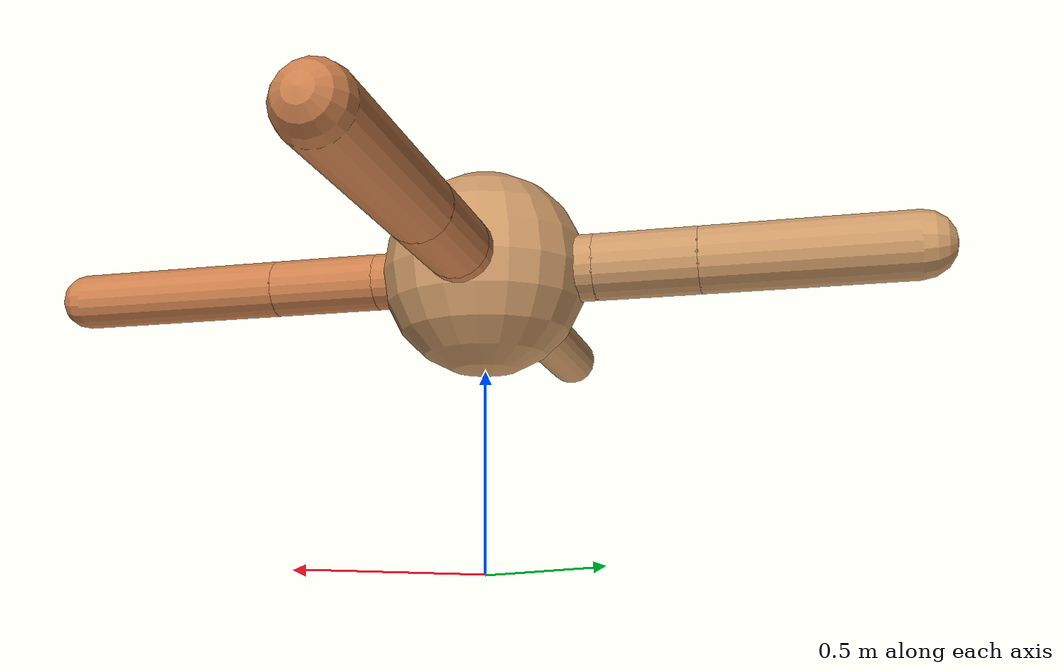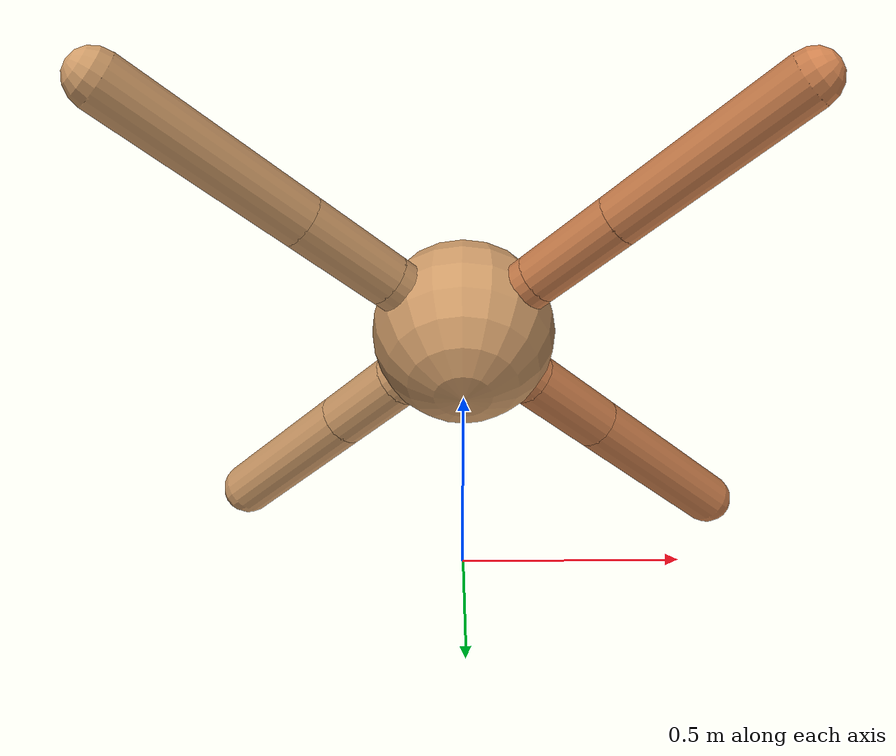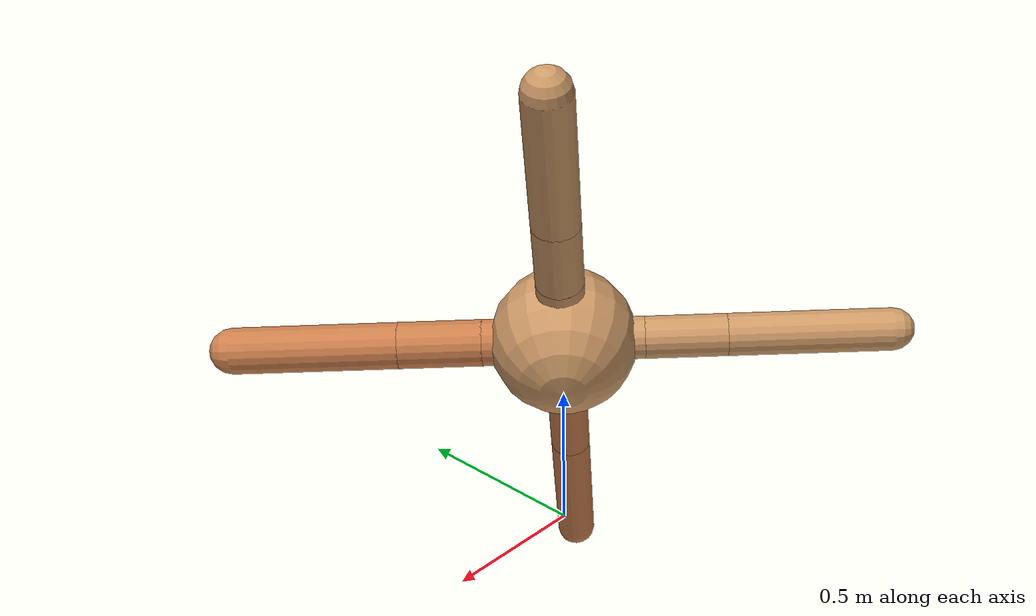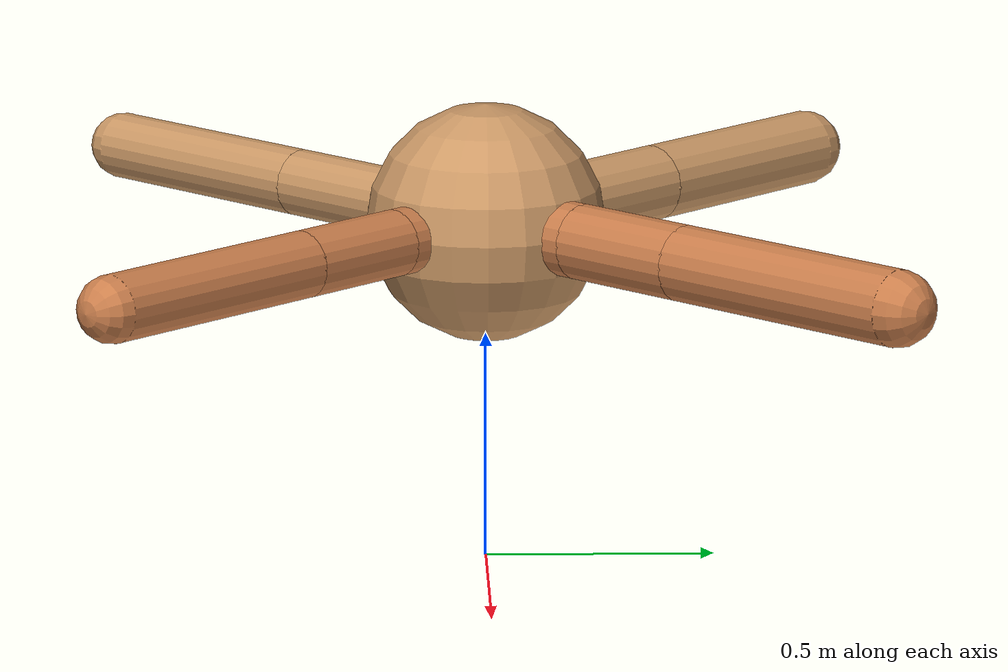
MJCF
<?xml version="1.0" ?>
<mujoco model="ant">

	<compiler angle="degree" coordinate="local" inertiafromgeom="true"/>

	<option integrator="RK4" timestep="0.01"/>

	<custom>

		<numeric data="0.0 0.0 0.55 1.0 0.0 0.0 0.0 0.0 1.0 0.0 -1.0 0.0 -1.0 0.0 1.0" name="init_qpos"/>

	</custom>

	<default>

		<joint armature="1" damping="1" limited="true"/>

		<geom conaffinity="0" condim="3" density="5.0" friction="1.5 0.1 0.1" margin="0.01" rgba="0.8 0.6 0.4 1"/>

	</default>

	<worldbody>

		<body name="torso" pos="0 0 0.75">

			<geom name="torso_geom" pos="0 0 0" size="0.2594515305948725" type="sphere"/>

			<!--joint armature="0" damping="0" limited="false" margin="0.01" name="root" pos="0 0 0" type="free"/-->

			<body name="front_left_leg" pos="0 0 0">

				<geom fromto="0 0 0 0.2 0.2 0" name="aux_1_geom" size="0.08216102997254102" type="capsule" rgba=".8 .5 .3 1"/>

				<body name="aux_1" pos="0.2 0.2 0">

					<joint axis="0 0 1" name="hip_1" pos="0.0 0.0 0.0" range="-40 40" type="hinge"/>

					<geom fromto="0 0 0 0.20792364025305343 0.20792364025305343 0" name="left_leg_geom" size="0.08216102997254102" type="capsule" rgba=".8 .5 .3 1"/>

					<body pos="0.20792364025305343 0.20792364025305343 0" name="front_left_foot">

						<joint axis="-1 1 0" name="ankle_1" pos="0.0 0.0 0.0" range="30 100" type="hinge"/>

						<geom fromto="0 0 0 0.41584728050610686 0.41584728050610686 0" name="left_ankle_geom" size="0.08216102997254102" type="capsule" rgba=".8 .5 .3 1"/>

					</body>

				</body>

			</body>

			<body name="front_right_leg" pos="0 0 0">

				<geom fromto="0 0 0 -0.2 0.2 0" name="aux_2_geom" size="0.08366456833780202" type="capsule"/>

				<body name="aux_2" pos="-0.2 0.2 0">

					<joint axis="0 0 1" name="hip_2" pos="0.0 0.0 0.0" range="-40 40" type="hinge"/>

					<geom fromto="0 0 0 -0.18107218717203621 0.18107218717203621 0" name="right_leg_geom" size="0.08366456833780202" type="capsule"/>

					<body pos="-0.18107218717203621 0.18107218717203621 0" name="front_right_foot">

						<joint axis="1 1 0" name="ankle_2" pos="0.0 0.0 0.0" range="-100 -30" type="hinge"/>

						<geom fromto="0 0 0 -0.36214437434407243 0.36214437434407243 0" name="right_ankle_geom" size="0.08366456833780202" type="capsule"/>

					</body>

				</body>

			</body>

			<body name="left_back_leg" pos="0 0 0">

				<geom fromto="0 0 0 -0.2 -0.2 0" name="aux_3_geom" size="0.07439533517060945" type="capsule"/>

				<body name="aux_3" pos="-0.2 -0.2 0">

					<joint axis="0 0 1" name="hip_3" pos="0.0 0.0 0.0" range="-40 40" type="hinge"/>

					<geom fromto="0 0 0 -0.20195560353188702 -0.20195560353188702 0" name="back_leg_geom" size="0.07439533517060945" type="capsule"/>

					<body pos="-0.20195560353188702 -0.20195560353188702 0" name="left_back_foot">

						<joint axis="-1 1 0" name="ankle_3" pos="0.0 0.0 0.0" range="-100 -30" type="hinge"/>

						<geom fromto="0 0 0 -0.40391120706377404 -0.40391120706377404 0" name="third_ankle_geom" size="0.07439533517060945" type="capsule"/>

					</body>

				</body>

			</body>

			<body name="right_back_leg" pos="0 0 0">

				<geom fromto="0 0 0 0.2 -0.2 0" name="aux_4_geom" size="0.07260240419103206" type="capsule" rgba=".8 .5 .3 1"/>

				<body name="aux_4" pos="0.2 -0.2 0">

					<joint axis="0 0 1" name="hip_4" pos="0.0 0.0 0.0" range="-40 40" type="hinge"/>

					<geom fromto="0 0 0 0.19582920956964714 -0.19582920956964714 0" name="rightback_leg_geom" size="0.07260240419103206" type="capsule" rgba=".8 .5 .3 1"/>

					<body pos="0.19582920956964714 -0.19582920956964714 0" name="right_back_foot">

						<joint axis="1 1 0" name="ankle_4" pos="0.0 0.0 0.0" range="30 100" type="hinge"/>

						<geom fromto="0 0 0 0.3916584191392943 -0.3916584191392943 0" name="fourth_ankle_geom" size="0.07260240419103206" type="capsule" rgba=".8 .5 .3 1"/>

					</body>

				</body>

			</body>

		</body>

	</worldbody>

	<actuator>

		<motor ctrllimited="true" ctrlrange="-1.0 1.0" joint="hip_4" gear="150"/>

		<motor ctrllimited="true" ctrlrange="-1.0 1.0" joint="ankle_4" gear="150"/>

		<motor ctrllimited="true" ctrlrange="-1.0 1.0" joint="hip_1" gear="150"/>

		<motor ctrllimited="true" ctrlrange="-1.0 1.0" joint="ankle_1" gear="150"/>

		<motor ctrllimited="true" ctrlrange="-1.0 1.0" joint="hip_2" gear="150"/>

		<motor ctrllimited="true" ctrlrange="-1.0 1.0" joint="ankle_2" gear="150"/>

		<motor ctrllimited="true" ctrlrange="-1.0 1.0" joint="hip_3" gear="150"/>

		<motor ctrllimited="true" ctrlrange="-1.0 1.0" joint="ankle_3" gear="150"/>

	</actuator>

</mujoco>
